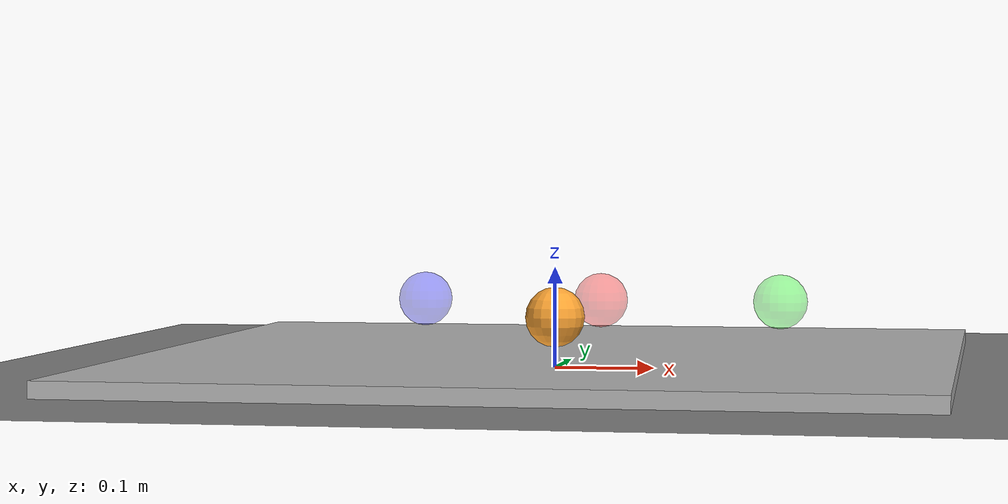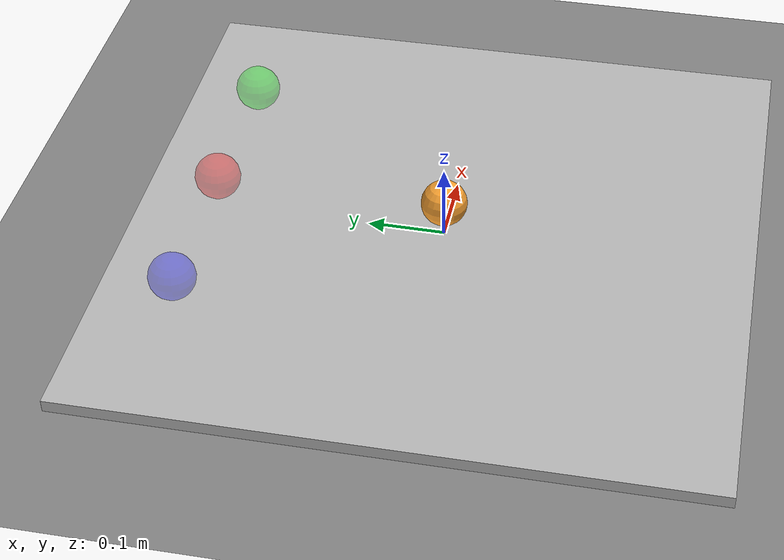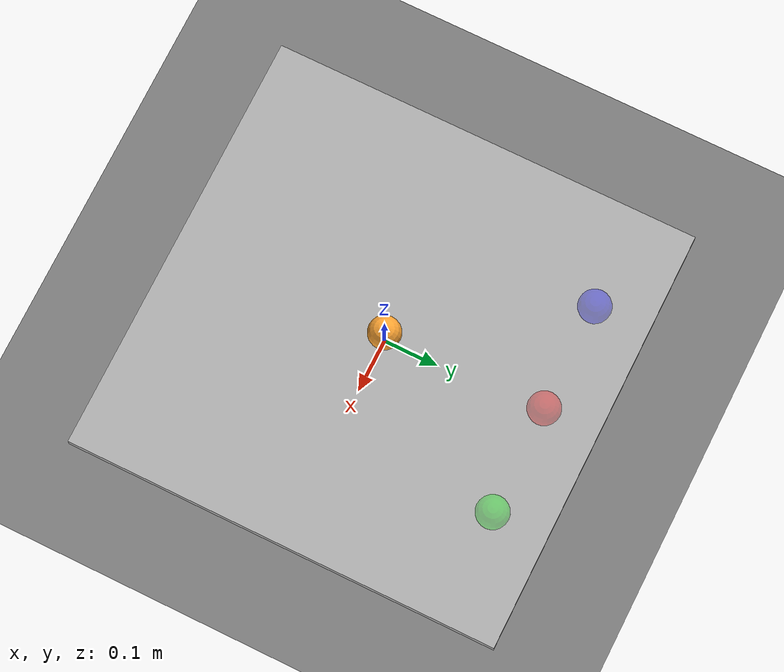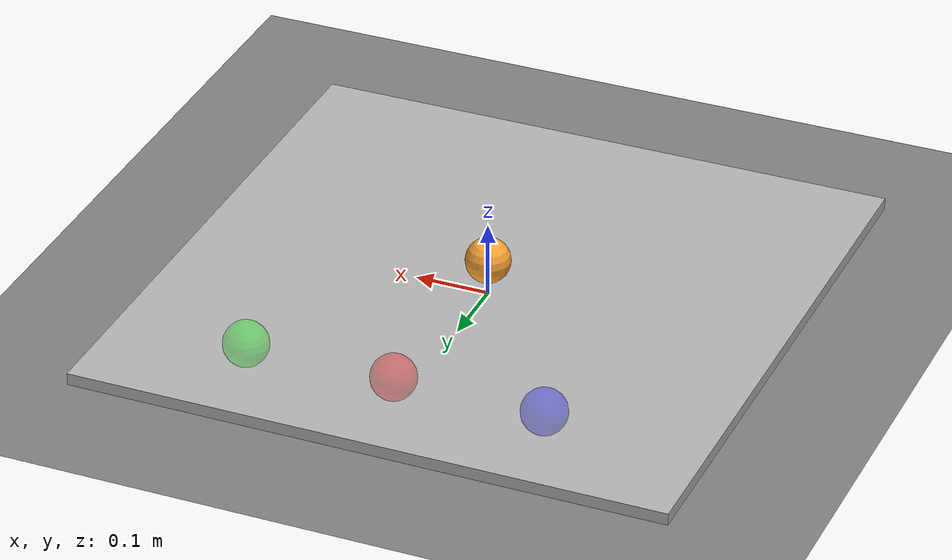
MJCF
<mujoco model="pusher_manipulate">
  <asset>
    <material name="mat_workspace"  rgba="0.70 0.70 0.70 1" shininess="0.05"/>
    <material name="mat_pusher"     rgba="1 0.65 0.20 1"/>
    <material name="mat_goal_g"     rgba="0 1 0 0.35"/>
    <material name="mat_goal_r"     rgba="1 0 0 0.35"/>
    <material name="mat_goal_b"     rgba="0 0 1 0.35"/>
  </asset>

  <worldbody>
    <!-- light -->
    <light name="light" type="directional" dir="0 0 -1" diffuse="0.75 0.75 0.75" specular="0.2 0.2 0.2"/>

    <!-- Ground -->
    <geom name="ground" type="plane" size="5 5 0.1"/>

    <!-- Workspace -->
    <body name="workspace" pos="0 0 0.005" quat="1 0 0 0">
      <geom name="workspace_geom" type="box"
            size="0.4 0.4 0.01"
            material="mat_workspace"
            friction="0.5 0.005 0.0001"/>
    </body>

    <!-- Pusher -->
    <body name="pusher" pos="0 0 0.05" quat="1 0 0 0" gravcomp="1">
        <joint name="pusher_x" type="slide" axis="1 0 0" damping="1"/>
        <joint name="pusher_y" type="slide" axis="0 1 0" damping="1"/>
        <joint name="pusher_z" type="slide" axis="0 0 1" damping="1"/>
        <geom name="pusher_geom"
              type="sphere"
              size="0.03"
              material="mat_pusher"
              friction="0.5 0.005 0.0001"
              mass="0.5"/>
    </body>

    <!-- goal -->
    <body name="goal_r" pos="0 0.3 0.05" quat="1 0 0 0" mocap="true">
      <geom name="goal_r_geom"
            type="sphere"
            size="0.03"
            material="mat_goal_r"
            contype="0"
            conaffinity="0"/>
    </body>

    <body name="goal_g" pos="0.2 0.3 0.05" quat="1 0 0 0" mocap="true">
      <geom name="goal_g_geom"
            type="sphere"
            size="0.03"
            material="mat_goal_g"
            contype="0"
            conaffinity="0"/>
    </body>

    <body name="goal_b" pos="-0.2 0.3 0.05" quat="1 0 0 0" mocap="true">
      <geom name="goal_b_geom"
            type="sphere"
            size="0.03"
            material="mat_goal_b"
            contype="0"
            conaffinity="0"/>
    </body>

  </worldbody>

  <actuator>
    <velocity name="pusher_vx" joint="pusher_x" kv="80"/>
    <velocity name="pusher_vy" joint="pusher_y" kv="80"/>
    <velocity name="pusher_vz" joint="pusher_z" kv="80"/>
  </actuator>

</mujoco>
